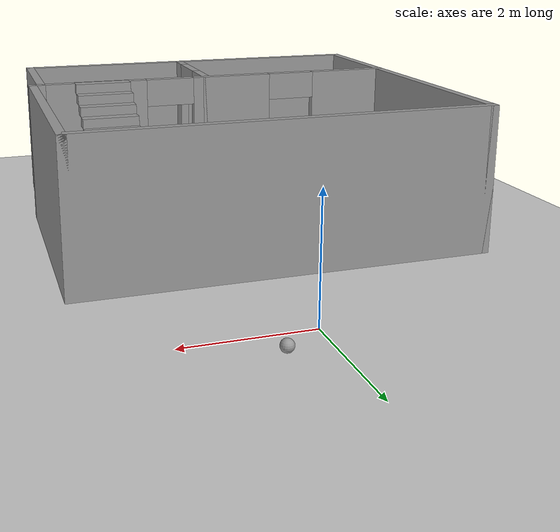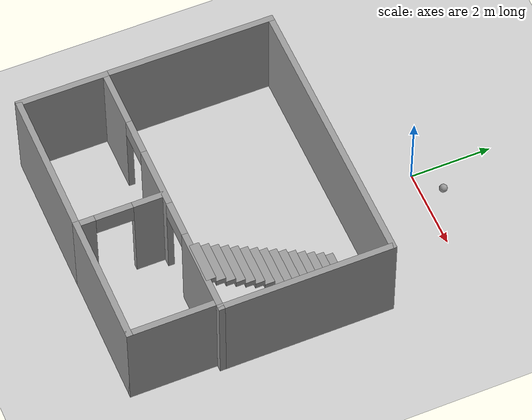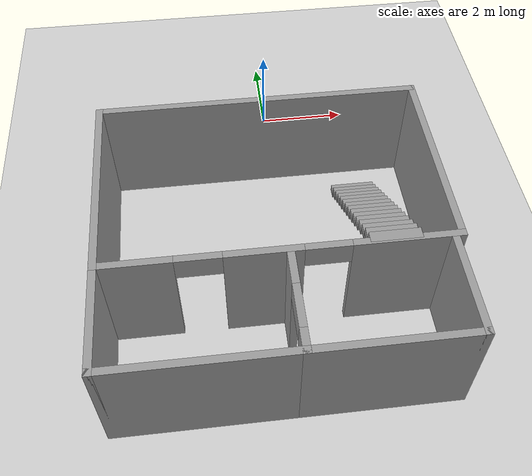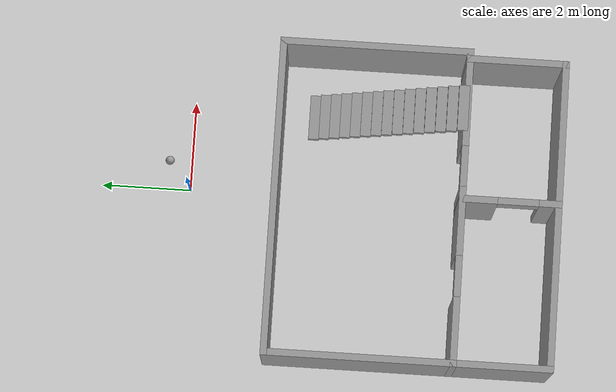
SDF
<sdf version="1.7">
 <world name="default">
  <light name="sun" type="directional">
   <pose>0 0 10 0 -0 0</pose>
   <diffuse>0.8 0.8 0.8 1</diffuse>
   <specular>0.2 0.2 0.2 1</specular>
   <attenuation>
    <range>1000</range>
    <constant>0.9</constant>
    <linear>0.01</linear>
    <quadratic>0.001</quadratic>
   </attenuation>
   <direction>-0.5 0.1 -0.9</direction>
   <spot><inner_angle>0</inner_angle><outer_angle>0</outer_angle><falloff>0</falloff></spot>
  </light>
  <model name="ground_plane">
   <static>1</static>
   <link name="link">
    <collision name="collision">
     <geometry><plane><normal>0 0 1</normal><size>100 100</size></plane></geometry>
     <surface>
      <contact><collide_bitmask>65535</collide_bitmask></contact>
      <friction><ode><mu>100</mu><mu2>50</mu2></ode></friction>
     </surface>
    </collision>
    <visual name="visual">
     <cast_shadows>0</cast_shadows>
     <geometry><plane><normal>0 0 1</normal><size>100 100</size></plane></geometry>
     <material>
      <script><uri>file://media/materials/scripts/gazebo.material</uri><name>Gazebo/Grey</name></script>
     </material>
    </visual>
   </link>
  </model>
  <gravity>0 0 -9.8</gravity>
  <magnetic_field>6e-06 2.3e-05 -4.2e-05</magnetic_field>
  <atmosphere type="adiabatic"/>
  <physics type="ode">
   <max_step_size>0.001</max_step_size>
   <real_time_factor>1</real_time_factor>
   <real_time_update_rate>1000</real_time_update_rate>
  </physics>
  <scene><ambient>0.4 0.4 0.4 1</ambient><background>0.7 0.7 0.7 1</background><shadows>1</shadows></scene>
  <spherical_coordinates>
   <surface_model>EARTH_WGS84</surface_model>
   <latitude_deg>0</latitude_deg>
   <longitude_deg>0</longitude_deg>
   <elevation>0</elevation>
   <heading_deg>0</heading_deg>
  </spherical_coordinates>
  <model name="room">
   <pose>-0.335 -4.1125 0 0 -0 0</pose>
   <link name="Stairs_0">
    <visual name="Stairs_0_Visual_0">
     <pose>2.175 1.41583 0.083333 0 -0 0</pose>
     <geometry><box><size>1 0.233333 0.166667</size></box></geometry>
     <material>
      <script><uri>file://media/materials/scripts/gazebo.material</uri><name>Gazebo/Grey</name></script>
      <ambient>1 1 1 1</ambient>
     </material>
     <meta><layer>0</layer></meta>
    </visual>
    <collision name="Stairs_0_Collision_0">
     <geometry><box><size>1 0.233333 0.166667</size></box></geometry>
     <pose>2.175 1.41583 0.083333 0 -0 0</pose>
    </collision>
    <visual name="Stairs_0_Visual_1">
     <pose>2.175 1.1825 0.25 0 -0 0</pose>
     <geometry><box><size>1 0.233333 0.166667</size></box></geometry>
     <material>
      <script><uri>file://media/materials/scripts/gazebo.material</uri><name>Gazebo/Grey</name></script>
      <ambient>1 1 1 1</ambient>
     </material>
     <meta><layer>0</layer></meta>
    </visual>
    <collision name="Stairs_0_Collision_1">
     <geometry><box><size>1 0.233333 0.166667</size></box></geometry>
     <pose>2.175 1.1825 0.25 0 -0 0</pose>
    </collision>
    <visual name="Stairs_0_Visual_2">
     <pose>2.175 0.949167 0.416667 0 -0 0</pose>
     <geometry><box><size>1 0.233333 0.166667</size></box></geometry>
     <material>
      <script><uri>file://media/materials/scripts/gazebo.material</uri><name>Gazebo/Grey</name></script>
      <ambient>1 1 1 1</ambient>
     </material>
     <meta><layer>0</layer></meta>
    </visual>
    <collision name="Stairs_0_Collision_2">
     <geometry><box><size>1 0.233333 0.166667</size></box></geometry>
     <pose>2.175 0.949167 0.416667 0 -0 0</pose>
    </collision>
    <visual name="Stairs_0_Visual_3">
     <pose>2.175 0.715834 0.583333 0 -0 0</pose>
     <geometry><box><size>1 0.233333 0.166667</size></box></geometry>
     <material>
      <script><uri>file://media/materials/scripts/gazebo.material</uri><name>Gazebo/Grey</name></script>
      <ambient>1 1 1 1</ambient>
     </material>
     <meta><layer>0</layer></meta>
    </visual>
    <collision name="Stairs_0_Collision_3">
     <geometry><box><size>1 0.233333 0.166667</size></box></geometry>
     <pose>2.175 0.715834 0.583333 0 -0 0</pose>
    </collision>
    <visual name="Stairs_0_Visual_4">
     <pose>2.175 0.4825 0.75 0 -0 0</pose>
     <geometry><box><size>1 0.233333 0.166667</size></box></geometry>
     <material>
      <script><uri>file://media/materials/scripts/gazebo.material</uri><name>Gazebo/Grey</name></script>
      <ambient>1 1 1 1</ambient>
     </material>
     <meta><layer>0</layer></meta>
    </visual>
    <collision name="Stairs_0_Collision_4">
     <geometry><box><size>1 0.233333 0.166667</size></box></geometry>
     <pose>2.175 0.4825 0.75 0 -0 0</pose>
    </collision>
    <visual name="Stairs_0_Visual_5">
     <pose>2.175 0.249167 0.916667 0 -0 0</pose>
     <geometry><box><size>1 0.233333 0.166667</size></box></geometry>
     <material>
      <script><uri>file://media/materials/scripts/gazebo.material</uri><name>Gazebo/Grey</name></script>
      <ambient>1 1 1 1</ambient>
     </material>
     <meta><layer>0</layer></meta>
    </visual>
    <collision name="Stairs_0_Collision_5">
     <geometry><box><size>1 0.233333 0.166667</size></box></geometry>
     <pose>2.175 0.249167 0.916667 0 -0 0</pose>
    </collision>
    <visual name="Stairs_0_Visual_6">
     <pose>2.175 0.015834 1.08333 0 -0 0</pose>
     <geometry><box><size>1 0.233333 0.166667</size></box></geometry>
     <material>
      <script><uri>file://media/materials/scripts/gazebo.material</uri><name>Gazebo/Grey</name></script>
      <ambient>1 1 1 1</ambient>
     </material>
     <meta><layer>0</layer></meta>
    </visual>
    <collision name="Stairs_0_Collision_6">
     <geometry><box><size>1 0.233333 0.166667</size></box></geometry>
     <pose>2.175 0.015834 1.08333 0 -0 0</pose>
    </collision>
    <visual name="Stairs_0_Visual_7">
     <pose>2.175 -0.2175 1.25 0 -0 0</pose>
     <geometry><box><size>1 0.233333 0.166667</size></box></geometry>
     <material>
      <script><uri>file://media/materials/scripts/gazebo.material</uri><name>Gazebo/Grey</name></script>
      <ambient>1 1 1 1</ambient>
     </material>
     <meta><layer>0</layer></meta>
    </visual>
    <collision name="Stairs_0_Collision_7">
     <geometry><box><size>1 0.233333 0.166667</size></box></geometry>
     <pose>2.175 -0.2175 1.25 0 -0 0</pose>
    </collision>
    <visual name="Stairs_0_Visual_8">
     <pose>2.175 -0.450833 1.41667 0 -0 0</pose>
     <geometry><box><size>1 0.233333 0.166667</size></box></geometry>
     <material>
      <script><uri>file://media/materials/scripts/gazebo.material</uri><name>Gazebo/Grey</name></script>
      <ambient>1 1 1 1</ambient>
     </material>
     <meta><layer>0</layer></meta>
    </visual>
    <collision name="Stairs_0_Collision_8">
     <geometry><box><size>1 0.233333 0.166667</size></box></geometry>
     <pose>2.175 -0.450833 1.41667 0 -0 0</pose>
    </collision>
    <visual name="Stairs_0_Visual_9">
     <pose>2.175 -0.684166 1.58333 0 -0 0</pose>
     <geometry><box><size>1 0.233333 0.166667</size></box></geometry>
     <material>
      <script><uri>file://media/materials/scripts/gazebo.material</uri><name>Gazebo/Grey</name></script>
      <ambient>1 1 1 1</ambient>
     </material>
     <meta><layer>0</layer></meta>
    </visual>
    <collision name="Stairs_0_Collision_9">
     <geometry><box><size>1 0.233333 0.166667</size></box></geometry>
     <pose>2.175 -0.684166 1.58333 0 -0 0</pose>
    </collision>
    <visual name="Stairs_0_Visual_10">
     <pose>2.175 -0.9175 1.75 0 -0 0</pose>
     <geometry><box><size>1 0.233333 0.166667</size></box></geometry>
     <material>
      <script><uri>file://media/materials/scripts/gazebo.material</uri><name>Gazebo/Grey</name></script>
      <ambient>1 1 1 1</ambient>
     </material>
     <meta><layer>0</layer></meta>
    </visual>
    <collision name="Stairs_0_Collision_10">
     <geometry><box><size>1 0.233333 0.166667</size></box></geometry>
     <pose>2.175 -0.9175 1.75 0 -0 0</pose>
    </collision>
    <visual name="Stairs_0_Visual_11">
     <pose>2.175 -1.15083 1.91667 0 -0 0</pose>
     <geometry><box><size>1 0.233333 0.166667</size></box></geometry>
     <material>
      <script><uri>file://media/materials/scripts/gazebo.material</uri><name>Gazebo/Grey</name></script>
      <ambient>1 1 1 1</ambient>
     </material>
     <meta><layer>0</layer></meta>
    </visual>
    <collision name="Stairs_0_Collision_11">
     <geometry><box><size>1 0.233333 0.166667</size></box></geometry>
     <pose>2.175 -1.15083 1.91667 0 -0 0</pose>
    </collision>
    <visual name="Stairs_0_Visual_12">
     <pose>2.175 -1.38417 2.08333 0 -0 0</pose>
     <geometry><box><size>1 0.233333 0.166667</size></box></geometry>
     <material>
      <script><uri>file://media/materials/scripts/gazebo.material</uri><name>Gazebo/Grey</name></script>
      <ambient>1 1 1 1</ambient>
     </material>
     <meta><layer>0</layer></meta>
    </visual>
    <collision name="Stairs_0_Collision_12">
     <geometry><box><size>1 0.233333 0.166667</size></box></geometry>
     <pose>2.175 -1.38417 2.08333 0 -0 0</pose>
    </collision>
    <visual name="Stairs_0_Visual_13">
     <pose>2.175 -1.6175 2.25 0 -0 0</pose>
     <geometry><box><size>1 0.233333 0.166667</size></box></geometry>
     <material>
      <script><uri>file://media/materials/scripts/gazebo.material</uri><name>Gazebo/Grey</name></script>
      <ambient>1 1 1 1</ambient>
     </material>
     <meta><layer>0</layer></meta>
    </visual>
    <collision name="Stairs_0_Collision_13">
     <geometry><box><size>1 0.233333 0.166667</size></box></geometry>
     <pose>2.175 -1.6175 2.25 0 -0 0</pose>
    </collision>
    <visual name="Stairs_0_Visual_14">
     <pose>2.175 -1.85083 2.41667 0 -0 0</pose>
     <geometry><box><size>1 0.233333 0.166667</size></box></geometry>
     <material>
      <script><uri>file://media/materials/scripts/gazebo.material</uri><name>Gazebo/Grey</name></script>
      <ambient>1 1 1 1</ambient>
     </material>
     <meta><layer>0</layer></meta>
    </visual>
    <collision name="Stairs_0_Collision_14">
     <geometry><box><size>1 0.233333 0.166667</size></box></geometry>
     <pose>2.175 -1.85083 2.41667 0 -0 0</pose>
    </collision>
   </link>
   <link name="Wall_0">
    <collision name="Wall_0_Collision">
     <geometry><box><size>4.25 0.15 2.5</size></box></geometry>
     <pose>0 0 1.25 0 -0 0</pose>
    </collision>
    <visual name="Wall_0_Visual">
     <pose>0 0 1.25 0 -0 0</pose>
     <geometry><box><size>4.25 0.15 2.5</size></box></geometry>
     <material>
      <script><uri>file://media/materials/scripts/gazebo.material</uri><name>Gazebo/Grey</name></script>
      <ambient>1 1 1 1</ambient>
     </material>
     <meta><layer>0</layer></meta>
    </visual>
    <pose>-3.425 0.1125 0 0 -0 1.5708</pose>
   </link>
   <link name="Wall_1">
    <collision name="Wall_1_Collision">
     <geometry><box><size>7 0.15 2.5</size></box></geometry>
     <pose>0 0 1.25 0 -0 0</pose>
    </collision>
    <visual name="Wall_1_Visual">
     <pose>0 0 1.25 0 -0 0</pose>
     <geometry><box><size>7 0.15 2.5</size></box></geometry>
     <material>
      <script><uri>file://media/materials/scripts/gazebo.material</uri><name>Gazebo/Grey</name></script>
      <ambient>1 1 1 1</ambient>
     </material>
     <meta><layer>0</layer></meta>
    </visual>
    <pose>0 2.1625 0 0 -0 0</pose>
   </link>
   <link name="Wall_10">
    <collision name="Wall_10_Collision">
     <geometry><box><size>2.25 0.15 2.5</size></box></geometry>
     <pose>0 0 1.25 0 -0 0</pose>
    </collision>
    <visual name="Wall_10_Visual">
     <pose>0 0 1.25 0 -0 0</pose>
     <geometry><box><size>2.25 0.15 2.5</size></box></geometry>
     <material>
      <script><uri>file://media/materials/scripts/gazebo.material</uri><name>Gazebo/Grey</name></script>
      <ambient>1 1 1 1</ambient>
     </material>
     <meta><layer>0</layer></meta>
    </visual>
    <pose>3.275 -2.9875 0 0 -0 1.5708</pose>
   </link>
   <link name="Wall_2">
    <collision name="Wall_2_Collision">
     <geometry><box><size>4.25 0.15 2.5</size></box></geometry>
     <pose>0 0 1.25 0 -0 0</pose>
    </collision>
    <visual name="Wall_2_Visual">
     <pose>0 0 1.25 0 -0 0</pose>
     <geometry><box><size>4.25 0.15 2.5</size></box></geometry>
     <material>
      <script><uri>file://media/materials/scripts/gazebo.material</uri><name>Gazebo/Grey</name></script>
      <ambient>1 1 1 1</ambient>
     </material>
     <meta><layer>0</layer></meta>
    </visual>
    <pose>3.425 0.1125 0 0 -0 -1.5708</pose>
   </link>
   <link name="Wall_3">
    <pose>0 -1.9375 0 0 -0 3.14159</pose>
    <visual name="Wall_3_Visual_0">
     <pose>-2.4225 0 1.25 0 -0 0</pose>
     <geometry><box><size>2.155 0.15 2.5</size></box></geometry>
     <material>
      <script><uri>file://media/materials/scripts/gazebo.material</uri><name>Gazebo/Grey</name></script>
      <ambient>1 1 1 1</ambient>
     </material>
     <meta><layer>0</layer></meta>
    </visual>
    <collision name="Wall_3_Collision_0">
     <geometry><box><size>2.155 0.15 2.5</size></box></geometry>
     <pose>-2.4225 0 1.25 0 -0 0</pose>
    </collision>
    <visual name="Wall_3_Visual_1">
     <pose>0.315 0 1.25 0 -0 0</pose>
     <geometry><box><size>1.52 0.15 2.5</size></box></geometry>
     <material>
      <script><uri>file://media/materials/scripts/gazebo.material</uri><name>Gazebo/Grey</name></script>
      <ambient>1 1 1 1</ambient>
     </material>
     <meta><layer>0</layer></meta>
    </visual>
    <collision name="Wall_3_Collision_1">
     <geometry><box><size>1.52 0.15 2.5</size></box></geometry>
     <pose>0.315 0 1.25 0 -0 0</pose>
    </collision>
    <visual name="Wall_3_Visual_2">
     <pose>2.7375 0 1.25 0 -0 0</pose>
     <geometry><box><size>1.525 0.15 2.5</size></box></geometry>
     <material>
      <script><uri>file://media/materials/scripts/gazebo.material</uri><name>Gazebo/Grey</name></script>
      <ambient>1 1 1 1</ambient>
     </material>
     <meta><layer>0</layer></meta>
    </visual>
    <collision name="Wall_3_Collision_2">
     <geometry><box><size>1.525 0.15 2.5</size></box></geometry>
     <pose>2.7375 0 1.25 0 -0 0</pose>
    </collision>
    <visual name="Wall_3_Visual_3">
     <pose>-0.895 0 2.25 0 -0 0</pose>
     <geometry><box><size>0.9 0.15 0.5</size></box></geometry>
     <material>
      <script><uri>file://media/materials/scripts/gazebo.material</uri><name>Gazebo/Grey</name></script>
      <ambient>1 1 1 1</ambient>
     </material>
     <meta><layer>0</layer></meta>
    </visual>
    <collision name="Wall_3_Collision_3">
     <geometry><box><size>0.9 0.15 0.5</size></box></geometry>
     <pose>-0.895 0 2.25 0 -0 0</pose>
    </collision>
    <visual name="Wall_3_Visual_4">
     <pose>1.525 0 2.25 0 -0 0</pose>
     <geometry><box><size>0.9 0.15 0.5</size></box></geometry>
     <material>
      <script><uri>file://media/materials/scripts/gazebo.material</uri><name>Gazebo/Grey</name></script>
      <ambient>1 1 1 1</ambient>
     </material>
     <meta><layer>0</layer></meta>
    </visual>
    <collision name="Wall_3_Collision_4">
     <geometry><box><size>0.9 0.15 0.5</size></box></geometry>
     <pose>1.525 0 2.25 0 -0 0</pose>
    </collision>
   </link>
   <link name="Wall_5">
    <collision name="Wall_5_Collision">
     <geometry><box><size>2.25 0.15 2.5</size></box></geometry>
     <pose>0 0 1.25 0 -0 0</pose>
    </collision>
    <visual name="Wall_5_Visual">
     <pose>0 0 1.25 0 -0 0</pose>
     <geometry><box><size>2.25 0.15 2.5</size></box></geometry>
     <material>
      <script><uri>file://media/materials/scripts/gazebo.material</uri><name>Gazebo/Grey</name></script>
      <ambient>1 1 1 1</ambient>
     </material>
     <meta><layer>0</layer></meta>
    </visual>
    <pose>-3.425 -2.9875 0 0 -0 -1.5708</pose>
   </link>
   <link name="Wall_6">
    <collision name="Wall_6_Collision">
     <geometry><box><size>3.75 0.15 2.5</size></box></geometry>
     <pose>0 0 1.25 0 -0 0</pose>
    </collision>
    <visual name="Wall_6_Visual">
     <pose>0 0 1.25 0 -0 0</pose>
     <geometry><box><size>3.75 0.15 2.5</size></box></geometry>
     <material>
      <script><uri>file://media/materials/scripts/gazebo.material</uri><name>Gazebo/Grey</name></script>
      <ambient>1 1 1 1</ambient>
     </material>
     <meta><layer>0</layer></meta>
    </visual>
    <pose>-1.625 -4.0375 0 0 -0 0</pose>
   </link>
   <link name="Wall_7">
    <pose>0.175 -2.9875 0 0 -0 1.5708</pose>
    <visual name="Wall_7_Visual_0">
     <pose>-0.8725 0 1.25 0 -0 0</pose>
     <geometry><box><size>0.505 0.15 2.5</size></box></geometry>
     <material>
      <script><uri>file://media/materials/scripts/gazebo.material</uri><name>Gazebo/Grey</name></script>
      <ambient>1 1 1 1</ambient>
     </material>
     <meta><layer>0</layer></meta>
    </visual>
    <collision name="Wall_7_Collision_0">
     <geometry><box><size>0.505 0.15 2.5</size></box></geometry>
     <pose>-0.8725 0 1.25 0 -0 0</pose>
    </collision>
    <visual name="Wall_7_Visual_1">
     <pose>0.7025 0 1.25 0 -0 0</pose>
     <geometry><box><size>0.845 0.15 2.5</size></box></geometry>
     <material>
      <script><uri>file://media/materials/scripts/gazebo.material</uri><name>Gazebo/Grey</name></script>
      <ambient>1 1 1 1</ambient>
     </material>
     <meta><layer>0</layer></meta>
    </visual>
    <collision name="Wall_7_Collision_1">
     <geometry><box><size>0.845 0.15 2.5</size></box></geometry>
     <pose>0.7025 0 1.25 0 -0 0</pose>
    </collision>
    <visual name="Wall_7_Visual_2">
     <pose>-0.17 0 2.25 0 -0 0</pose>
     <geometry><box><size>0.9 0.15 0.5</size></box></geometry>
     <material>
      <script><uri>file://media/materials/scripts/gazebo.material</uri><name>Gazebo/Grey</name></script>
      <ambient>1 1 1 1</ambient>
     </material>
     <meta><layer>0</layer></meta>
    </visual>
    <collision name="Wall_7_Collision_2">
     <geometry><box><size>0.9 0.15 0.5</size></box></geometry>
     <pose>-0.17 0 2.25 0 -0 0</pose>
    </collision>
   </link>
   <link name="Wall_9">
    <collision name="Wall_9_Collision">
     <geometry><box><size>3.25 0.15 2.5</size></box></geometry>
     <pose>0 0 1.25 0 -0 0</pose>
    </collision>
    <visual name="Wall_9_Visual">
     <pose>0 0 1.25 0 -0 0</pose>
     <geometry><box><size>3.25 0.15 2.5</size></box></geometry>
     <material>
      <script><uri>file://media/materials/scripts/gazebo.material</uri><name>Gazebo/Grey</name></script>
      <ambient>1 1 1 1</ambient>
     </material>
     <meta><layer>0</layer></meta>
    </visual>
    <pose>1.725 -4.0375 0 0 -0 0</pose>
   </link>
   <static>1</static>
  </model>
  <model name="my_ball">
   <link name="link_0">
    <inertial>
     <mass>1</mass>
     <inertia><ixx>0.1</ixx><ixy>0</ixy><ixz>0</ixz><iyy>0.1</iyy><iyz>0</iyz><izz>0.1</izz></inertia>
    </inertial>
    <visual name="visual">
     <geometry><sphere><radius>0.1</radius></sphere></geometry>
     <material>
      <lighting>1</lighting>
      <script><uri>file://media/materials/scripts/gazebo.material</uri><name>Gazebo/Grey</name></script>
      <shader type="pixel"><normal_map>__default__</normal_map></shader>
      <ambient>1 1 1 1</ambient>
      <diffuse>1 1 1 1</diffuse>
      <specular>1 1 1 1</specular>
      <emissive>1 1 1 1</emissive>
     </material>
    </visual>
    <collision name="collision">
     <geometry><sphere><radius>0.1</radius></sphere></geometry>
     <surface>
      <friction>
       <ode><mu>1</mu><mu2>1</mu2><fdir1>0 0 0</fdir1><slip1>0</slip1><slip2>0</slip2></ode>
       <torsional>
        <coefficient>1</coefficient>
        <patch_radius>0</patch_radius>
        <surface_radius>0</surface_radius>
        <use_patch_radius>1</use_patch_radius>
        <ode><slip>0</slip></ode>
       </torsional>
      </friction>
      <bounce><restitution_coefficient>0</restitution_coefficient><threshold>1e+06</threshold></bounce>
      <contact>
       <collide_without_contact>0</collide_without_contact>
       <collide_without_contact_bitmask>1</collide_without_contact_bitmask>
       <collide_bitmask>1</collide_bitmask>
       <ode>
        <soft_cfm>0</soft_cfm>
        <soft_erp>0.2</soft_erp>
        <kp>1e+13</kp>
        <kd>1</kd>
        <max_vel>0.01</max_vel>
        <min_depth>0</min_depth>
       </ode>
       <bullet>
        <split_impulse>1</split_impulse>
        <split_impulse_penetration_threshold>-0.01</split_impulse_penetration_threshold>
        <soft_cfm>0</soft_cfm>
        <soft_erp>0.2</soft_erp>
        <kp>1e+13</kp>
        <kd>1</kd>
       </bullet>
      </contact>
     </surface>
    </collision>
   </link>
   <static>0</static>
   <pose>0.656321 0.51056 0.1 0 -0 0</pose>
  </model>
 </world>
</sdf>
